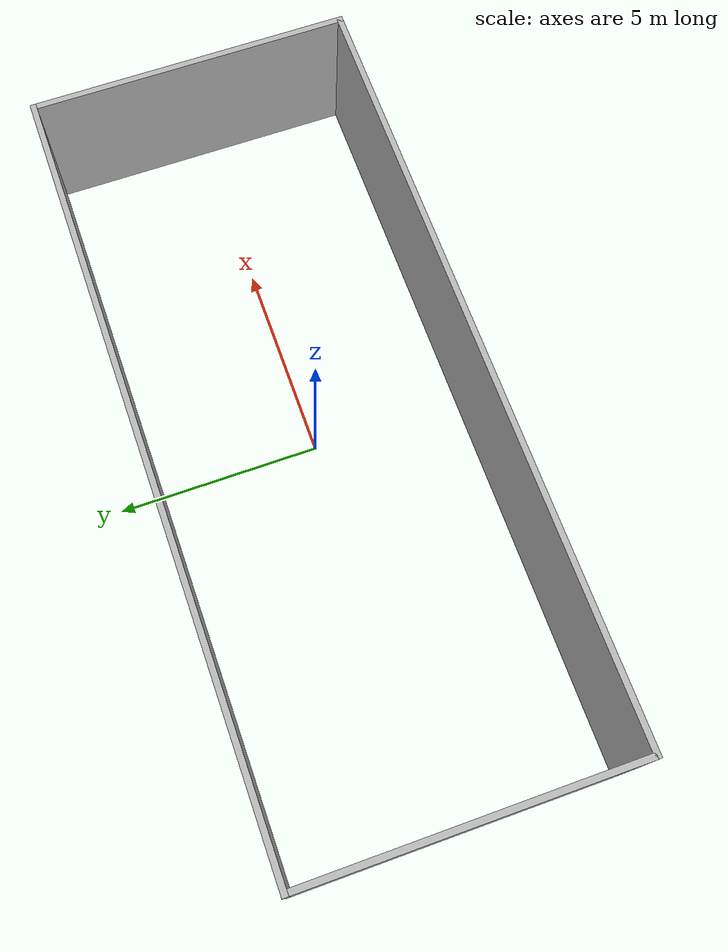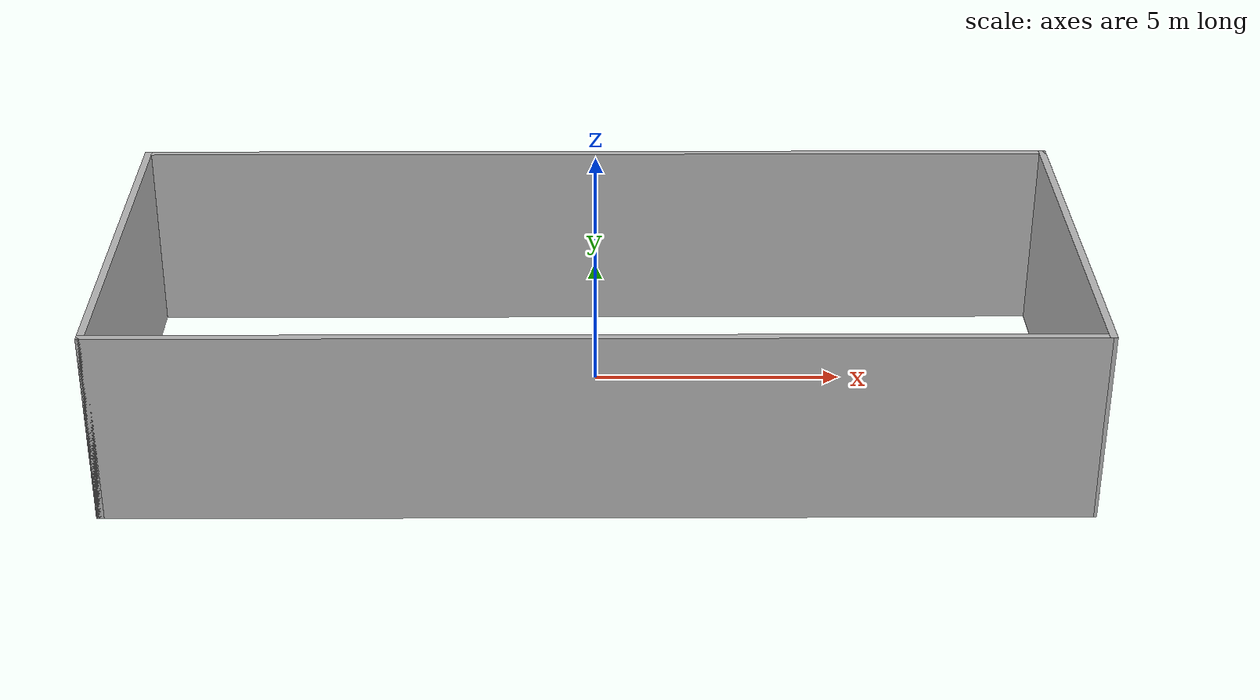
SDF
<sdf version="1.5">
 <world name="default">
  <light name="sun" type="directional">
   <cast_shadows>0</cast_shadows>
   <pose>0 0 10 0 -0 0</pose>
   <diffuse>0.8 0.8 0.8 1</diffuse>
   <specular>0.2 0.2 0.2 1</specular>
   <attenuation>
    <range>1000</range>
    <constant>0.9</constant>
    <linear>0.01</linear>
    <quadratic>0.001</quadratic>
   </attenuation>
   <direction>-0.5 0.1 -0.9</direction>
  </light>
  <scene><sky><clouds><speed>1</speed></clouds></sky></scene>
  <physics type="ode">
   <real_time_update_rate>1000</real_time_update_rate>
   <ode>
    <solver>
     <type>quick</type>
     <iters>70</iters>
     <sor>1.3</sor>
     <use_dynamic_moi_rescaling>0</use_dynamic_moi_rescaling>
    </solver>
    <constraints>
     <cfm>0</cfm>
     <erp>0.2</erp>
     <contact_max_correcting_vel>100</contact_max_correcting_vel>
     <contact_surface_layer>0.001</contact_surface_layer>
    </constraints>
   </ode>
   <max_step_size>0.001</max_step_size>
   <real_time_factor>1</real_time_factor>
   <gravity>0 0 -9.8</gravity>
   <magnetic_field>5.5645e-06 2.28758e-05 -4.23884e-05</magnetic_field>
  </physics>
  <scene><ambient>0.4 0.4 0.4 1</ambient><background>0.7 0.7 0.7 1</background><shadows>1</shadows></scene>
  <spherical_coordinates>
   <surface_model>EARTH_WGS84</surface_model>
   <latitude_deg>0</latitude_deg>
   <longitude_deg>0</longitude_deg>
   <elevation>0</elevation>
   <heading_deg>0</heading_deg>
  </spherical_coordinates>
  <include><uri>model://ucsd_tent_walls</uri><name>ucsd_tent_walls</name><pose>0 0 0.001 0 0 0</pose></include>
 </world>
</sdf>

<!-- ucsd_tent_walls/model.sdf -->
<sdf version='1.7'>
  <model name='ucsd_tent_walls'>
    <pose>0.112948 0 0 0 -0 0</pose>
    <link name='Wall_10'>
      <collision name='Wall_10_Collision'>
        <geometry>
          <box>
            <size>8.15 0.15 4</size>
          </box>
        </geometry>
        <pose>0 0 1.25 0 -0 0</pose>
      </collision>
      <visual name='Wall_10_Visual'>
        <pose>0 0 1.25 0 -0 0</pose>
        <geometry>
          <box>
            <size>8.15 0.15 4</size>
          </box>
        </geometry>
          <material>
            <script>
              <uri>model://ucsd_tent_walls/materials/scripts</uri>
              <uri>model://ucsd_tent_walls/materials/textures</uri>
              <name>Floor/ShortWall</name>
            </script>
          </material>
        <meta>
          <layer>0</layer>
        </meta>
      </visual>
      <pose>9.61255 0 0 0 -0 1.57067</pose>
    </link>
    <link name='Wall_11'>
      <collision name='Wall_11_Collision'>
        <geometry>
          <box>
            <size>19.376 0.15 4</size>
          </box>
        </geometry>
        <pose>0 0 1.25 0 -0 0</pose>
      </collision>
      <visual name='Wall_11_Visual'>
        <pose>0 0 1.25 0 -0 0</pose>
        <geometry>
          <box>
            <size>19.376 0.15 4</size>
          </box>
        </geometry>
          <material>
            <script>
              <uri>model://ucsd_tent_walls/materials/scripts</uri>
              <uri>model://ucsd_tent_walls/materials/textures</uri>
              <name>Floor/LongWall</name>
            </script>
          </material>
        <meta>
          <layer>0</layer>
        </meta>
      </visual>
      <pose>5.2e-05 4 0 0 -0 3.14159</pose>
    </link>
    <link name='Wall_12'>
      <collision name='Wall_12_Collision'>
        <geometry>
          <box>
            <size>8.15 0.15 4</size>
          </box>
        </geometry>
        <pose>0 0 1.25 0 -0 0</pose>
      </collision>
      <visual name='Wall_12_Visual'>
        <pose>0 0 1.25 0 -0 0</pose>
        <geometry>
          <box>
            <size>8.15 0.15 4</size>
          </box>
        </geometry>
          <material>
            <script>
              <uri>model://ucsd_tent_walls/materials/scripts</uri>
              <uri>model://ucsd_tent_walls/materials/textures</uri>
              <name>Floor/ShortWall</name>
            </script>
          </material>
        <meta>
          <layer>0</layer>
        </meta>
      </visual>
      <pose>-9.61295 0 0 0 -0 -1.5708</pose>
    </link>
    <link name='Wall_9'>
      <collision name='Wall_9_Collision'>
        <geometry>
          <box>
            <size>19.3752 0.15 4</size>
          </box>
        </geometry>
        <pose>0 0 1.25 0 -0 0</pose>
      </collision>
      <visual name='Wall_9_Visual'>
        <pose>0 0 1.25 0 -0 0</pose>
        <geometry>
          <box>
            <size>19.3752 0.15 4</size>
          </box>
        </geometry>
          <material>
            <script>
              <uri>model://ucsd_tent_walls/materials/scripts</uri>
              <uri>model://ucsd_tent_walls/materials/textures</uri>
              <name>Floor/LongWall</name>
            </script>
          </material>
        <meta>
          <layer>0</layer>
        </meta>
      </visual>
      <pose>-0.000448 -4 0 0 -0 0</pose>
    </link>
    <static>1</static>
  </model>
</sdf>
